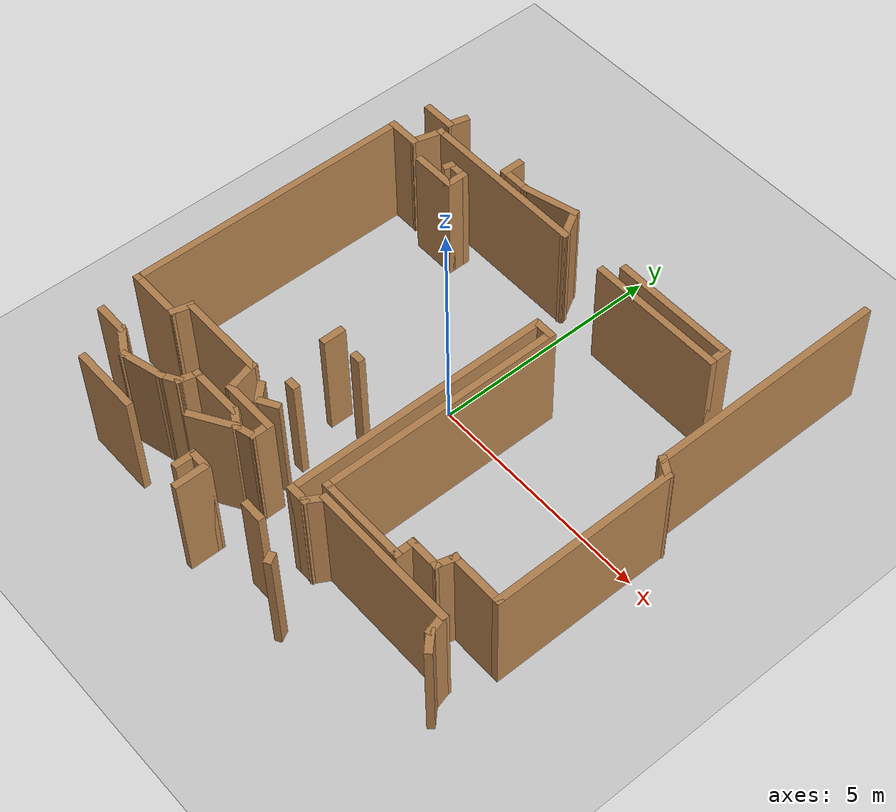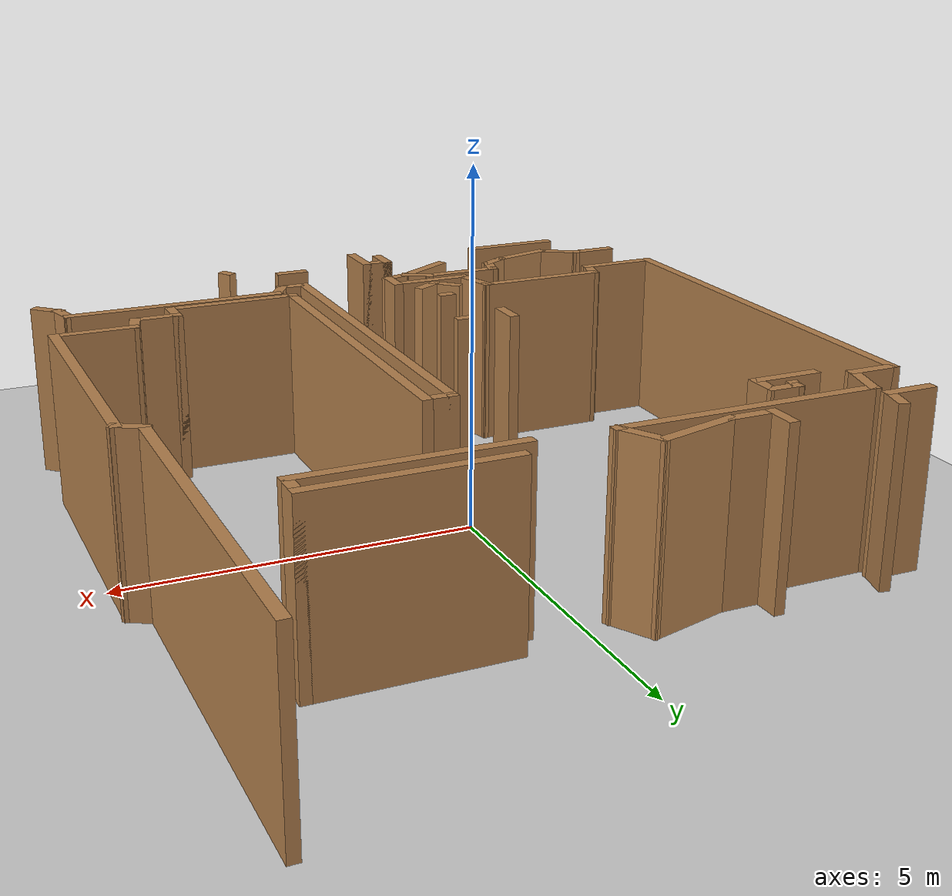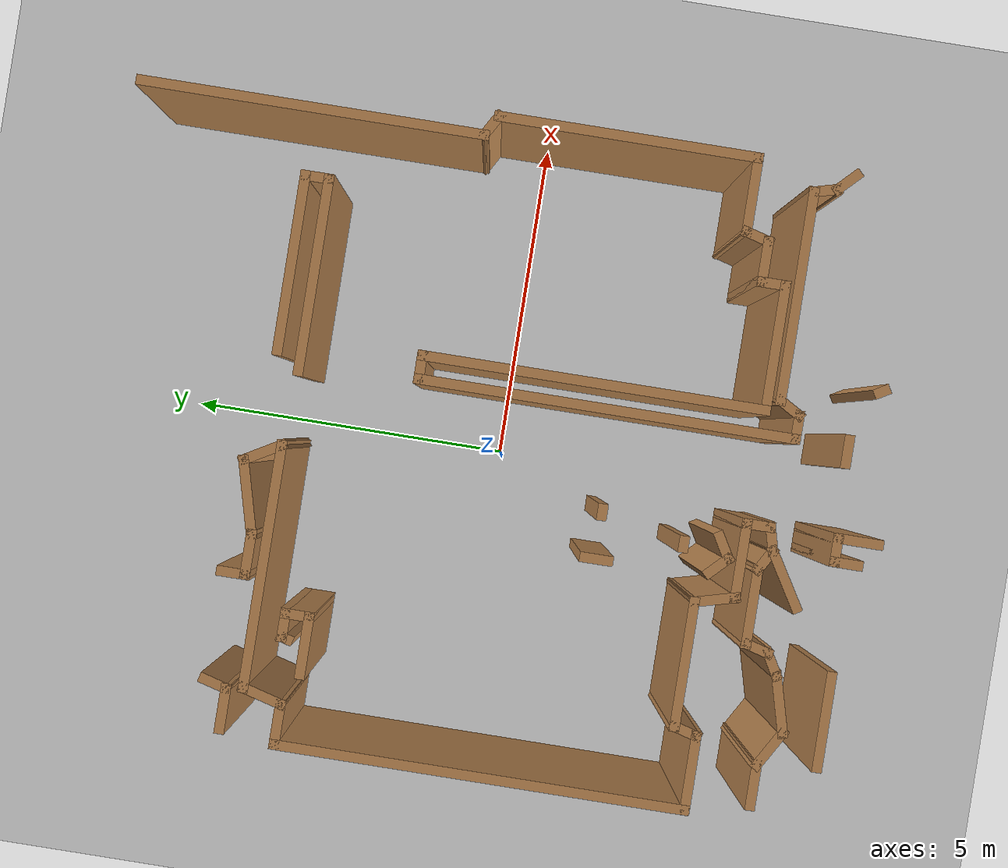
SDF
<sdf version="1.6">
 <world name="default">
  <model name="ground_plane">
   <static>1</static>
   <link name="link">
    <collision name="collision">
     <geometry><plane><normal>0 0 1</normal><size>100 100</size></plane></geometry>
     <surface>
      <contact><collide_bitmask>65535</collide_bitmask></contact>
      <friction><ode><mu>100</mu><mu2>50</mu2></ode></friction>
     </surface>
    </collision>
    <visual name="visual">
     <cast_shadows>0</cast_shadows>
     <geometry><plane><normal>0 0 1</normal><size>100 100</size></plane></geometry>
     <material>
      <script><uri>file://media/materials/scripts/gazebo.material</uri><name>Gazebo/Grey</name></script>
     </material>
    </visual>
   </link>
  </model>
  <model name="map_31">
   <pose>0.094706 -0.239588 0 0 -0 0</pose>
   <link name="Wall_10">
    <collision name="Wall_10_Collision">
     <geometry><box><size>0.75 0.15 2.5</size></box></geometry>
     <pose>0 0 1.25 0 -0 0</pose>
    </collision>
    <visual name="Wall_10_Visual">
     <pose>0 0 1.25 0 -0 0</pose>
     <geometry><box><size>0.75 0.15 2.5</size></box></geometry>
     <material>
      <script><uri>file://media/materials/scripts/gazebo.material</uri><name>Gazebo/Wood</name></script>
      <ambient>1 1 1 1</ambient>
     </material>
     <meta><layer>0</layer></meta>
    </visual>
    <pose>-2.13137 3.66941 0 0 -0 0</pose>
   </link>
   <link name="Wall_11">
    <collision name="Wall_11_Collision">
     <geometry><box><size>1.25 0.15 2.5</size></box></geometry>
     <pose>0 0 1.25 0 -0 0</pose>
    </collision>
    <visual name="Wall_11_Visual">
     <pose>0 0 1.25 0 -0 0</pose>
     <geometry><box><size>1.25 0.15 2.5</size></box></geometry>
     <material>
      <script><uri>file://media/materials/scripts/gazebo.material</uri><name>Gazebo/Wood</name></script>
      <ambient>1 1 1 1</ambient>
     </material>
     <meta><layer>0</layer></meta>
    </visual>
    <pose>-1.30011 3.81176 0 0 -0 0.261799</pose>
   </link>
   <link name="Wall_12">
    <collision name="Wall_12_Collision">
     <geometry><box><size>0.75 0.15 2.5</size></box></geometry>
     <pose>0 0 1.25 0 -0 0</pose>
    </collision>
    <visual name="Wall_12_Visual">
     <pose>0 0 1.25 0 -0 0</pose>
     <geometry><box><size>0.75 0.15 2.5</size></box></geometry>
     <material>
      <script><uri>file://media/materials/scripts/gazebo.material</uri><name>Gazebo/Wood</name></script>
      <ambient>1 1 1 1</ambient>
     </material>
     <meta><layer>0</layer></meta>
    </visual>
    <pose>-0.618855 3.6943 0 0 -0 -1.0472</pose>
   </link>
   <link name="Wall_13">
    <collision name="Wall_13_Collision">
     <geometry><box><size>3.75 0.15 2.5</size></box></geometry>
     <pose>0 0 1.25 0 -0 0</pose>
    </collision>
    <visual name="Wall_13_Visual">
     <pose>0 0 1.25 0 -0 0</pose>
     <geometry><box><size>3.75 0.15 2.5</size></box></geometry>
     <material>
      <script><uri>file://media/materials/scripts/gazebo.material</uri><name>Gazebo/Wood</name></script>
      <ambient>1 1 1 1</ambient>
     </material>
     <meta><layer>0</layer></meta>
    </visual>
    <pose>-2.26885 3.4345 0 0 -0 3.14159</pose>
   </link>
   <link name="Wall_132">
    <collision name="Wall_132_Collision">
     <geometry><box><size>0.5 0.15 2.5</size></box></geometry>
     <pose>0 0 1.25 0 -0 0</pose>
    </collision>
    <visual name="Wall_132_Visual">
     <pose>0 0 1.25 0 -0 0</pose>
     <geometry><box><size>0.5 0.15 2.5</size></box></geometry>
     <material>
      <script><uri>file://media/materials/scripts/gazebo.material</uri><name>Gazebo/Wood</name></script>
      <ambient>1 1 1 1</ambient>
     </material>
     <meta><layer>0</layer></meta>
    </visual>
    <pose>-1.39156 -1.38804 0 0 -0 -1.5708</pose>
   </link>
   <link name="Wall_134">
    <collision name="Wall_134_Collision">
     <geometry><box><size>0.25 0.15 2.5</size></box></geometry>
     <pose>0 0 1.25 0 -0 0</pose>
    </collision>
    <visual name="Wall_134_Visual">
     <pose>0 0 1.25 0 -0 0</pose>
     <geometry><box><size>0.25 0.15 2.5</size></box></geometry>
     <material>
      <script><uri>file://media/materials/scripts/gazebo.material</uri><name>Gazebo/Wood</name></script>
      <ambient>1 1 1 1</ambient>
     </material>
     <meta><layer>0</layer></meta>
    </visual>
    <pose>-0.699161 -1.36599 0 0 -0 0</pose>
   </link>
   <link name="Wall_136">
    <collision name="Wall_136_Collision">
     <geometry><box><size>0.25 0.15 2.5</size></box></geometry>
     <pose>0 0 1.25 0 -0 0</pose>
    </collision>
    <visual name="Wall_136_Visual">
     <pose>0 0 1.25 0 -0 0</pose>
     <geometry><box><size>0.25 0.15 2.5</size></box></geometry>
     <material>
      <script><uri>file://media/materials/scripts/gazebo.material</uri><name>Gazebo/Wood</name></script>
      <ambient>1 1 1 1</ambient>
     </material>
     <meta><layer>0</layer></meta>
    </visual>
    <pose>-0.974473 -2.62019 0 0 -0 0</pose>
   </link>
   <link name="Wall_138">
    <collision name="Wall_138_Collision">
     <geometry><box><size>0.5 0.15 2.5</size></box></geometry>
     <pose>0 0 1.25 0 -0 0</pose>
    </collision>
    <visual name="Wall_138_Visual">
     <pose>0 0 1.25 0 -0 0</pose>
     <geometry><box><size>0.5 0.15 2.5</size></box></geometry>
     <material>
      <script><uri>file://media/materials/scripts/gazebo.material</uri><name>Gazebo/Wood</name></script>
      <ambient>1 1 1 1</ambient>
     </material>
     <meta><layer>0</layer></meta>
    </visual>
    <pose>-1.20663 -3.1722 0 0 -0 -0.785398</pose>
   </link>
   <link name="Wall_139">
    <collision name="Wall_139_Collision">
     <geometry><box><size>0.5 0.15 2.5</size></box></geometry>
     <pose>0 0 1.25 0 -0 0</pose>
    </collision>
    <visual name="Wall_139_Visual">
     <pose>0 0 1.25 0 -0 0</pose>
     <geometry><box><size>0.5 0.15 2.5</size></box></geometry>
     <material>
      <script><uri>file://media/materials/scripts/gazebo.material</uri><name>Gazebo/Wood</name></script>
      <ambient>1 1 1 1</ambient>
     </material>
     <meta><layer>0</layer></meta>
    </visual>
    <pose>-0.931333 -3.20844 0 0 -0 0.523599</pose>
   </link>
   <link name="Wall_14">
    <collision name="Wall_14_Collision">
     <geometry><box><size>0.75 0.15 2.5</size></box></geometry>
     <pose>0 0 1.25 0 -0 0</pose>
    </collision>
    <visual name="Wall_14_Visual">
     <pose>0 0 1.25 0 -0 0</pose>
     <geometry><box><size>0.75 0.15 2.5</size></box></geometry>
     <material>
      <script><uri>file://media/materials/scripts/gazebo.material</uri><name>Gazebo/Wood</name></script>
      <ambient>1 1 1 1</ambient>
     </material>
     <meta><layer>0</layer></meta>
    </visual>
    <pose>-4.1465 3.14472 0 0 -0 -1.8326</pose>
   </link>
   <link name="Wall_141">
    <collision name="Wall_141_Collision">
     <geometry><box><size>1 0.15 2.5</size></box></geometry>
     <pose>0 0 1.25 0 -0 0</pose>
    </collision>
    <visual name="Wall_141_Visual">
     <pose>0 0 1.25 0 -0 0</pose>
     <geometry><box><size>1 0.15 2.5</size></box></geometry>
     <material>
      <script><uri>file://media/materials/scripts/gazebo.material</uri><name>Gazebo/Wood</name></script>
      <ambient>1 1 1 1</ambient>
     </material>
     <meta><layer>0</layer></meta>
    </visual>
    <pose>-3.322 2.64133 0 0 -0 0</pose>
   </link>
   <link name="Wall_142">
    <collision name="Wall_142_Collision">
     <geometry><box><size>0.5 0.15 2.5</size></box></geometry>
     <pose>0 0 1.25 0 -0 0</pose>
    </collision>
    <visual name="Wall_142_Visual">
     <pose>0 0 1.25 0 -0 0</pose>
     <geometry><box><size>0.5 0.15 2.5</size></box></geometry>
     <material>
      <script><uri>file://media/materials/scripts/gazebo.material</uri><name>Gazebo/Wood</name></script>
      <ambient>1 1 1 1</ambient>
     </material>
     <meta><layer>0</layer></meta>
    </visual>
    <pose>-2.897 2.81633 0 0 -0 1.5708</pose>
   </link>
   <link name="Wall_143">
    <collision name="Wall_143_Collision">
     <geometry><box><size>0.5 0.15 2.5</size></box></geometry>
     <pose>0 0 1.25 0 -0 0</pose>
    </collision>
    <visual name="Wall_143_Visual">
     <pose>0 0 1.25 0 -0 0</pose>
     <geometry><box><size>0.5 0.15 2.5</size></box></geometry>
     <material>
      <script><uri>file://media/materials/scripts/gazebo.material</uri><name>Gazebo/Wood</name></script>
      <ambient>1 1 1 1</ambient>
     </material>
     <meta><layer>0</layer></meta>
    </visual>
    <pose>-3.072 2.99133 0 0 -0 3.14159</pose>
   </link>
   <link name="Wall_144">
    <collision name="Wall_144_Collision">
     <geometry><box><size>0.25 0.15 2.5</size></box></geometry>
     <pose>0 0 1.25 0 -0 0</pose>
    </collision>
    <visual name="Wall_144_Visual">
     <pose>0 0 1.25 0 -0 0</pose>
     <geometry><box><size>0.25 0.15 2.5</size></box></geometry>
     <material>
      <script><uri>file://media/materials/scripts/gazebo.material</uri><name>Gazebo/Wood</name></script>
      <ambient>1 1 1 1</ambient>
     </material>
     <meta><layer>0</layer></meta>
    </visual>
    <pose>-3.25994 2.94303 0 0 -0 -1.8326</pose>
   </link>
   <link name="Wall_146">
    <collision name="Wall_146_Collision">
     <geometry><box><size>1.05065 0.15 2.5</size></box></geometry>
     <pose>0 0 1.25 0 -0 0</pose>
    </collision>
    <visual name="Wall_146_Visual">
     <pose>0 0 1.25 0 -0 0</pose>
     <geometry><box><size>1.05065 0.15 2.5</size></box></geometry>
     <material>
      <script><uri>file://media/materials/scripts/gazebo.material</uri><name>Gazebo/Wood</name></script>
      <ambient>1 1 1 1</ambient>
     </material>
     <meta><layer>0</layer></meta>
    </visual>
    <pose>-1.25131 -4.16078 0 0 -0 0.545501</pose>
   </link>
   <link name="Wall_161">
    <collision name="Wall_161_Collision">
     <geometry><box><size>1.5 0.15 2.5</size></box></geometry>
     <pose>0 0 1.25 0 -0 0</pose>
    </collision>
    <visual name="Wall_161_Visual">
     <pose>0 0 1.25 0 -0 0</pose>
     <geometry><box><size>1.5 0.15 2.5</size></box></geometry>
     <material>
      <script><uri>file://media/materials/scripts/gazebo.material</uri><name>Gazebo/Wood</name></script>
      <ambient>1 1 1 1</ambient>
     </material>
     <meta><layer>0</layer></meta>
    </visual>
    <pose>-3.22495 -5.06741 0 0 -0 3.14159</pose>
   </link>
   <link name="Wall_163">
    <collision name="Wall_163_Collision">
     <geometry><box><size>0.25 0.15 2.5</size></box></geometry>
     <pose>0 0 1.25 0 -0 0</pose>
    </collision>
    <visual name="Wall_163_Visual">
     <pose>0 0 1.25 0 -0 0</pose>
     <geometry><box><size>0.25 0.15 2.5</size></box></geometry>
     <material>
      <script><uri>file://media/materials/scripts/gazebo.material</uri><name>Gazebo/Wood</name></script>
      <ambient>1 1 1 1</ambient>
     </material>
     <meta><layer>0</layer></meta>
    </visual>
    <pose>1.69247 -5.1413 0 0 -0 -1.0472</pose>
   </link>
   <link name="Wall_17">
    <collision name="Wall_17_Collision">
     <geometry><box><size>0.75 0.15 2.5</size></box></geometry>
     <pose>0 0 1.25 0 -0 0</pose>
    </collision>
    <visual name="Wall_17_Visual">
     <pose>0 0 1.25 0 -0 0</pose>
     <geometry><box><size>0.75 0.15 2.5</size></box></geometry>
     <material>
      <script><uri>file://media/materials/scripts/gazebo.material</uri><name>Gazebo/Wood</name></script>
      <ambient>1 1 1 1</ambient>
     </material>
     <meta><layer>0</layer></meta>
    </visual>
    <pose>-4.52415 2.85494 0 0 -0 3.14159</pose>
   </link>
   <link name="Wall_18">
    <collision name="Wall_18_Collision">
     <geometry><box><size>6.25 0.15 2.5</size></box></geometry>
     <pose>0 0 1.25 0 -0 0</pose>
    </collision>
    <visual name="Wall_18_Visual">
     <pose>0 0 1.25 0 -0 0</pose>
     <geometry><box><size>6.25 0.15 2.5</size></box></geometry>
     <material>
      <script><uri>file://media/materials/scripts/gazebo.material</uri><name>Gazebo/Wood</name></script>
      <ambient>1 1 1 1</ambient>
     </material>
     <meta><layer>0</layer></meta>
    </visual>
    <pose>-4.82415 -0.195058 0 0 -0 -1.5708</pose>
   </link>
   <link name="Wall_19">
    <collision name="Wall_19_Collision">
     <geometry><box><size>1.25 0.15 2.5</size></box></geometry>
     <pose>0 0 1.25 0 -0 0</pose>
    </collision>
    <visual name="Wall_19_Visual">
     <pose>0 0 1.25 0 -0 0</pose>
     <geometry><box><size>1.25 0.15 2.5</size></box></geometry>
     <material>
      <script><uri>file://media/materials/scripts/gazebo.material</uri><name>Gazebo/Wood</name></script>
      <ambient>1 1 1 1</ambient>
     </material>
     <meta><layer>0</layer></meta>
    </visual>
    <pose>-4.27415 -3.24506 0 0 -0 0</pose>
   </link>
   <link name="Wall_20">
    <collision name="Wall_20_Collision">
     <geometry><box><size>0.5 0.15 2.5</size></box></geometry>
     <pose>0 0 1.25 0 -0 0</pose>
    </collision>
    <visual name="Wall_20_Visual">
     <pose>0 0 1.25 0 -0 0</pose>
     <geometry><box><size>0.5 0.15 2.5</size></box></geometry>
     <material>
      <script><uri>file://media/materials/scripts/gazebo.material</uri><name>Gazebo/Wood</name></script>
      <ambient>1 1 1 1</ambient>
     </material>
     <meta><layer>0</layer></meta>
    </visual>
    <pose>-3.67885 -3.07602 0 0 -0 1.309</pose>
   </link>
   <link name="Wall_21">
    <collision name="Wall_21_Collision">
     <geometry><box><size>2 0.15 2.5</size></box></geometry>
     <pose>0 0 1.25 0 -0 0</pose>
    </collision>
    <visual name="Wall_21_Visual">
     <pose>0 0 1.25 0 -0 0</pose>
     <geometry><box><size>2 0.15 2.5</size></box></geometry>
     <material>
      <script><uri>file://media/materials/scripts/gazebo.material</uri><name>Gazebo/Wood</name></script>
      <ambient>1 1 1 1</ambient>
     </material>
     <meta><layer>0</layer></meta>
    </visual>
    <pose>-2.70856 -2.90698 0 0 -0 0</pose>
   </link>
   <link name="Wall_22">
    <collision name="Wall_22_Collision">
     <geometry><box><size>0.75 0.15 2.5</size></box></geometry>
     <pose>0 0 1.25 0 -0 0</pose>
    </collision>
    <visual name="Wall_22_Visual">
     <pose>0 0 1.25 0 -0 0</pose>
     <geometry><box><size>0.75 0.15 2.5</size></box></geometry>
     <material>
      <script><uri>file://media/materials/scripts/gazebo.material</uri><name>Gazebo/Wood</name></script>
      <ambient>1 1 1 1</ambient>
     </material>
     <meta><layer>0</layer></meta>
    </visual>
    <pose>-1.70591 -3.19676 0 0 -0 -1.309</pose>
   </link>
   <link name="Wall_23">
    <collision name="Wall_23_Collision">
     <geometry><box><size>1.25 0.15 2.5</size></box></geometry>
     <pose>0 0 1.25 0 -0 0</pose>
    </collision>
    <visual name="Wall_23_Visual">
     <pose>0 0 1.25 0 -0 0</pose>
     <geometry><box><size>1.25 0.15 2.5</size></box></geometry>
     <material>
      <script><uri>file://media/materials/scripts/gazebo.material</uri><name>Gazebo/Wood</name></script>
      <ambient>1 1 1 1</ambient>
     </material>
     <meta><layer>0</layer></meta>
    </visual>
    <pose>-1.07827 -3.48654 0 0 -0 0</pose>
   </link>
   <link name="Wall_24">
    <collision name="Wall_24_Collision">
     <geometry><box><size>0.5 0.15 2.5</size></box></geometry>
     <pose>0 0 1.25 0 -0 0</pose>
    </collision>
    <visual name="Wall_24_Visual">
     <pose>0 0 1.25 0 -0 0</pose>
     <geometry><box><size>0.5 0.15 2.5</size></box></geometry>
     <material>
      <script><uri>file://media/materials/scripts/gazebo.material</uri><name>Gazebo/Wood</name></script>
      <ambient>1 1 1 1</ambient>
     </material>
     <meta><layer>0</layer></meta>
    </visual>
    <pose>-0.528269 -3.66154 0 0 -0 -1.5708</pose>
   </link>
   <link name="Wall_25">
    <collision name="Wall_25_Collision">
     <geometry><box><size>0.5 0.15 2.5</size></box></geometry>
     <pose>0 0 1.25 0 -0 0</pose>
    </collision>
    <visual name="Wall_25_Visual">
     <pose>0 0 1.25 0 -0 0</pose>
     <geometry><box><size>0.5 0.15 2.5</size></box></geometry>
     <material>
      <script><uri>file://media/materials/scripts/gazebo.material</uri><name>Gazebo/Wood</name></script>
      <ambient>1 1 1 1</ambient>
     </material>
     <meta><layer>0</layer></meta>
    </visual>
    <pose>-0.697306 -3.88183 0 0 -0 -2.87979</pose>
   </link>
   <link name="Wall_26">
    <collision name="Wall_26_Collision">
     <geometry><box><size>0.5 0.15 2.5</size></box></geometry>
     <pose>0 0 1.25 0 -0 0</pose>
    </collision>
    <visual name="Wall_26_Visual">
     <pose>0 0 1.25 0 -0 0</pose>
     <geometry><box><size>0.5 0.15 2.5</size></box></geometry>
     <material>
      <script><uri>file://media/materials/scripts/gazebo.material</uri><name>Gazebo/Wood</name></script>
      <ambient>1 1 1 1</ambient>
     </material>
     <meta><layer>0</layer></meta>
    </visual>
    <pose>-1.0179 -3.83963 0 0 -0 2.61799</pose>
   </link>
   <link name="Wall_27">
    <collision name="Wall_27_Collision">
     <geometry><box><size>1.25 0.15 2.5</size></box></geometry>
     <pose>0 0 1.25 0 -0 0</pose>
    </collision>
    <visual name="Wall_27_Visual">
     <pose>0 0 1.25 0 -0 0</pose>
     <geometry><box><size>1.25 0.15 2.5</size></box></geometry>
     <material>
      <script><uri>file://media/materials/scripts/gazebo.material</uri><name>Gazebo/Wood</name></script>
      <ambient>1 1 1 1</ambient>
     </material>
     <meta><layer>0</layer></meta>
    </visual>
    <pose>-1.71945 -3.75213 0 0 -0 3.14159</pose>
   </link>
   <link name="Wall_28">
    <collision name="Wall_28_Collision">
     <geometry><box><size>0.5 0.15 2.5</size></box></geometry>
     <pose>0 0 1.25 0 -0 0</pose>
    </collision>
    <visual name="Wall_28_Visual">
     <pose>0 0 1.25 0 -0 0</pose>
     <geometry><box><size>0.5 0.15 2.5</size></box></geometry>
     <material>
      <script><uri>file://media/materials/scripts/gazebo.material</uri><name>Gazebo/Wood</name></script>
      <ambient>1 1 1 1</ambient>
     </material>
     <meta><layer>0</layer></meta>
    </visual>
    <pose>-2.31474 -3.92116 0 0 -0 -1.8326</pose>
   </link>
   <link name="Wall_29">
    <collision name="Wall_29_Collision">
     <geometry><box><size>0.5 0.15 2.5</size></box></geometry>
     <pose>0 0 1.25 0 -0 0</pose>
    </collision>
    <visual name="Wall_29_Visual">
     <pose>0 0 1.25 0 -0 0</pose>
     <geometry><box><size>0.5 0.15 2.5</size></box></geometry>
     <material>
      <script><uri>file://media/materials/scripts/gazebo.material</uri><name>Gazebo/Wood</name></script>
      <ambient>1 1 1 1</ambient>
     </material>
     <meta><layer>0</layer></meta>
    </visual>
    <pose>-2.51159 -4.1777 0 0 -0 -2.61799</pose>
   </link>
   <link name="Wall_32">
    <collision name="Wall_32_Collision">
     <geometry><box><size>1 0.15 2.5</size></box></geometry>
     <pose>0 0 1.25 0 -0 0</pose>
    </collision>
    <visual name="Wall_32_Visual">
     <pose>0 0 1.25 0 -0 0</pose>
     <geometry><box><size>1 0.15 2.5</size></box></geometry>
     <material>
      <script><uri>file://media/materials/scripts/gazebo.material</uri><name>Gazebo/Wood</name></script>
      <ambient>1 1 1 1</ambient>
     </material>
     <meta><layer>0</layer></meta>
    </visual>
    <pose>-3.07367 -4.3752 0 0 -0 -2.87979</pose>
   </link>
   <link name="Wall_33">
    <collision name="Wall_33_Collision">
     <geometry><box><size>0.75 0.15 2.5</size></box></geometry>
     <pose>0 0 1.25 0 -0 0</pose>
    </collision>
    <visual name="Wall_33_Visual">
     <pose>0 0 1.25 0 -0 0</pose>
     <geometry><box><size>0.75 0.15 2.5</size></box></geometry>
     <material>
      <script><uri>file://media/materials/scripts/gazebo.material</uri><name>Gazebo/Wood</name></script>
      <ambient>1 1 1 1</ambient>
     </material>
     <meta><layer>0</layer></meta>
    </visual>
    <pose>-3.74399 -4.3352 0 0 -0 2.61799</pose>
   </link>
   <link name="Wall_34">
    <collision name="Wall_34_Collision">
     <geometry><box><size>0.75 0.15 2.5</size></box></geometry>
     <pose>0 0 1.25 0 -0 0</pose>
    </collision>
    <visual name="Wall_34_Visual">
     <pose>0 0 1.25 0 -0 0</pose>
     <geometry><box><size>0.75 0.15 2.5</size></box></geometry>
     <material>
      <script><uri>file://media/materials/scripts/gazebo.material</uri><name>Gazebo/Wood</name></script>
      <ambient>1 1 1 1</ambient>
     </material>
     <meta><layer>0</layer></meta>
    </visual>
    <pose>-4.3038 -4.1852 0 0 -0 3.14159</pose>
   </link>
   <link name="Wall_54">
    <collision name="Wall_54_Collision">
     <geometry><box><size>0.5 0.15 2.5</size></box></geometry>
     <pose>0 0 1.25 0 -0 0</pose>
    </collision>
    <visual name="Wall_54_Visual">
     <pose>0 0 1.25 0 -0 0</pose>
     <geometry><box><size>0.5 0.15 2.5</size></box></geometry>
     <material>
      <script><uri>file://media/materials/scripts/gazebo.material</uri><name>Gazebo/Wood</name></script>
      <ambient>1 1 1 1</ambient>
     </material>
     <meta><layer>0</layer></meta>
    </visual>
    <pose>-0.881908 -5.01869 0 0 -0 1.5708</pose>
   </link>
   <link name="Wall_55">
    <collision name="Wall_55_Collision">
     <geometry><box><size>0.5 0.15 2.5</size></box></geometry>
     <pose>0 0 1.25 0 -0 0</pose>
    </collision>
    <visual name="Wall_55_Visual">
     <pose>0 0 1.25 0 -0 0</pose>
     <geometry><box><size>0.5 0.15 2.5</size></box></geometry>
     <material>
      <script><uri>file://media/materials/scripts/gazebo.material</uri><name>Gazebo/Wood</name></script>
      <ambient>1 1 1 1</ambient>
     </material>
     <meta><layer>0</layer></meta>
    </visual>
    <pose>-0.706908 -4.84369 0 0 -0 0</pose>
   </link>
   <link name="Wall_56">
    <collision name="Wall_56_Collision">
     <geometry><box><size>0.75 0.15 2.5</size></box></geometry>
     <pose>0 0 1.25 0 -0 0</pose>
    </collision>
    <visual name="Wall_56_Visual">
     <pose>0 0 1.25 0 -0 0</pose>
     <geometry><box><size>0.75 0.15 2.5</size></box></geometry>
     <material>
      <script><uri>file://media/materials/scripts/gazebo.material</uri><name>Gazebo/Wood</name></script>
      <ambient>1 1 1 1</ambient>
     </material>
     <meta><layer>0</layer></meta>
    </visual>
    <pose>-0.531908 -5.14369 0 0 -0 -1.5708</pose>
   </link>
   <link name="Wall_6">
    <collision name="Wall_6_Collision">
     <geometry><box><size>0.75 0.15 2.5</size></box></geometry>
     <pose>0 0 1.25 0 -0 0</pose>
    </collision>
    <visual name="Wall_6_Visual">
     <pose>0 0 1.25 0 -0 0</pose>
     <geometry><box><size>0.75 0.15 2.5</size></box></geometry>
     <material>
      <script><uri>file://media/materials/scripts/gazebo.material</uri><name>Gazebo/Wood</name></script>
      <ambient>1 1 1 1</ambient>
     </material>
     <meta><layer>0</layer></meta>
    </visual>
    <pose>-4.42196 3.68134 0 0 -0 0</pose>
   </link>
   <link name="Wall_7">
    <collision name="Wall_7_Collision">
     <geometry><box><size>0.5 0.15 2.5</size></box></geometry>
     <pose>0 0 1.25 0 -0 0</pose>
    </collision>
    <visual name="Wall_7_Visual">
     <pose>0 0 1.25 0 -0 0</pose>
     <geometry><box><size>0.5 0.15 2.5</size></box></geometry>
     <material>
      <script><uri>file://media/materials/scripts/gazebo.material</uri><name>Gazebo/Wood</name></script>
      <ambient>1 1 1 1</ambient>
     </material>
     <meta><layer>0</layer></meta>
    </visual>
    <pose>-4.07667 3.85038 0 0 -0 1.309</pose>
   </link>
   <link name="Wall_73">
    <collision name="Wall_73_Collision">
     <geometry><box><size>0.5 0.15 2.5</size></box></geometry>
     <pose>0 0 1.25 0 -0 0</pose>
    </collision>
    <visual name="Wall_73_Visual">
     <pose>0 0 1.25 0 -0 0</pose>
     <geometry><box><size>0.5 0.15 2.5</size></box></geometry>
     <material>
      <script><uri>file://media/materials/scripts/gazebo.material</uri><name>Gazebo/Wood</name></script>
      <ambient>1 1 1 1</ambient>
     </material>
     <meta><layer>0</layer></meta>
    </visual>
    <pose>0.744183 -4.77797 0 0 -0 0</pose>
   </link>
   <link name="Wall_77">
    <collision name="Wall_77_Collision">
     <geometry><box><size>0.5 0.15 2.5</size></box></geometry>
     <pose>0 0 1.25 0 -0 0</pose>
    </collision>
    <visual name="Wall_77_Visual">
     <pose>0 0 1.25 0 -0 0</pose>
     <geometry><box><size>0.5 0.15 2.5</size></box></geometry>
     <material>
      <script><uri>file://media/materials/scripts/gazebo.material</uri><name>Gazebo/Wood</name></script>
      <ambient>1 1 1 1</ambient>
     </material>
     <meta><layer>0</layer></meta>
    </visual>
    <pose>4.64544 -4.15423 0 0 -0 2.35619</pose>
   </link>
   <link name="Wall_78">
    <collision name="Wall_78_Collision">
     <geometry><box><size>0.5 0.15 2.5</size></box></geometry>
     <pose>0 0 1.25 0 -0 0</pose>
    </collision>
    <visual name="Wall_78_Visual">
     <pose>0 0 1.25 0 -0 0</pose>
     <geometry><box><size>0.5 0.15 2.5</size></box></geometry>
     <material>
      <script><uri>file://media/materials/scripts/gazebo.material</uri><name>Gazebo/Wood</name></script>
      <ambient>1 1 1 1</ambient>
     </material>
     <meta><layer>0</layer></meta>
    </visual>
    <pose>4.4764 -3.86144 0 0 -0 1.8326</pose>
   </link>
   <link name="Wall_79">
    <collision name="Wall_79_Collision">
     <geometry><box><size>3.25 0.15 2.5</size></box></geometry>
     <pose>0 0 1.25 0 -0 0</pose>
    </collision>
    <visual name="Wall_79_Visual">
     <pose>0 0 1.25 0 -0 0</pose>
     <geometry><box><size>3.25 0.15 2.5</size></box></geometry>
     <material>
      <script><uri>file://media/materials/scripts/gazebo.material</uri><name>Gazebo/Wood</name></script>
      <ambient>1 1 1 1</ambient>
     </material>
     <meta><layer>0</layer></meta>
    </visual>
    <pose>2.88111 -3.69241 0 0 -0 3.14159</pose>
   </link>
   <link name="Wall_80">
    <collision name="Wall_80_Collision">
     <geometry><box><size>0.5 0.15 2.5</size></box></geometry>
     <pose>0 0 1.25 0 -0 0</pose>
    </collision>
    <visual name="Wall_80_Visual">
     <pose>0 0 1.25 0 -0 0</pose>
     <geometry><box><size>0.5 0.15 2.5</size></box></geometry>
     <material>
      <script><uri>file://media/materials/scripts/gazebo.material</uri><name>Gazebo/Wood</name></script>
      <ambient>1 1 1 1</ambient>
     </material>
     <meta><layer>0</layer></meta>
    </visual>
    <pose>1.24361 -3.84396 0 0 -0 -2.0944</pose>
   </link>
   <link name="Wall_81">
    <collision name="Wall_81_Collision">
     <geometry><box><size>0.5 0.15 2.5</size></box></geometry>
     <pose>0 0 1.25 0 -0 0</pose>
    </collision>
    <visual name="Wall_81_Visual">
     <pose>0 0 1.25 0 -0 0</pose>
     <geometry><box><size>0.5 0.15 2.5</size></box></geometry>
     <material>
      <script><uri>file://media/materials/scripts/gazebo.material</uri><name>Gazebo/Wood</name></script>
      <ambient>1 1 1 1</ambient>
     </material>
     <meta><layer>0</layer></meta>
    </visual>
    <pose>0.981109 -3.99552 0 0 -0 3.14159</pose>
   </link>
   <link name="Wall_82">
    <collision name="Wall_82_Collision">
     <geometry><box><size>5.75 0.15 2.5</size></box></geometry>
     <pose>0 0 1.25 0 -0 0</pose>
    </collision>
    <visual name="Wall_82_Visual">
     <pose>0 0 1.25 0 -0 0</pose>
     <geometry><box><size>5.75 0.15 2.5</size></box></geometry>
     <material>
      <script><uri>file://media/materials/scripts/gazebo.material</uri><name>Gazebo/Wood</name></script>
      <ambient>1 1 1 1</ambient>
     </material>
     <meta><layer>0</layer></meta>
    </visual>
    <pose>0.806109 -1.19552 0 0 -0 1.5708</pose>
   </link>
   <link name="Wall_83">
    <collision name="Wall_83_Collision">
     <geometry><box><size>0.5 0.15 2.5</size></box></geometry>
     <pose>0 0 1.25 0 -0 0</pose>
    </collision>
    <visual name="Wall_83_Visual">
     <pose>0 0 1.25 0 -0 0</pose>
     <geometry><box><size>0.5 0.15 2.5</size></box></geometry>
     <material>
      <script><uri>file://media/materials/scripts/gazebo.material</uri><name>Gazebo/Wood</name></script>
      <ambient>1 1 1 1</ambient>
     </material>
     <meta><layer>0</layer></meta>
    </visual>
    <pose>0.981109 1.60448 0 0 -0 0</pose>
   </link>
   <link name="Wall_86">
    <collision name="Wall_86_Collision">
     <geometry><box><size>5.25 0.15 2.5</size></box></geometry>
     <pose>0 0 1.25 0 -0 0</pose>
    </collision>
    <visual name="Wall_86_Visual">
     <pose>0 0 1.25 0 -0 0</pose>
     <geometry><box><size>5.25 0.15 2.5</size></box></geometry>
     <material>
      <script><uri>file://media/materials/scripts/gazebo.material</uri><name>Gazebo/Wood</name></script>
      <ambient>1 1 1 1</ambient>
     </material>
     <meta><layer>0</layer></meta>
    </visual>
    <pose>1.15611 -0.945518 0 0 -0 -1.5708</pose>
   </link>
   <link name="Wall_87">
    <collision name="Wall_87_Collision">
     <geometry><box><size>2 0.15 2.5</size></box></geometry>
     <pose>0 0 1.25 0 -0 0</pose>
    </collision>
    <visual name="Wall_87_Visual">
     <pose>0 0 1.25 0 -0 0</pose>
     <geometry><box><size>2 0.15 2.5</size></box></geometry>
     <material>
      <script><uri>file://media/materials/scripts/gazebo.material</uri><name>Gazebo/Wood</name></script>
      <ambient>1 1 1 1</ambient>
     </material>
     <meta><layer>0</layer></meta>
    </visual>
    <pose>2.08111 -3.49552 0 0 -0 0</pose>
   </link>
   <link name="Wall_88">
    <collision name="Wall_88_Collision">
     <geometry><box><size>0.5 0.15 2.5</size></box></geometry>
     <pose>0 0 1.25 0 -0 0</pose>
    </collision>
    <visual name="Wall_88_Visual">
     <pose>0 0 1.25 0 -0 0</pose>
     <geometry><box><size>0.5 0.15 2.5</size></box></geometry>
     <material>
      <script><uri>file://media/materials/scripts/gazebo.material</uri><name>Gazebo/Wood</name></script>
      <ambient>1 1 1 1</ambient>
     </material>
     <meta><layer>0</layer></meta>
    </visual>
    <pose>3.00611 -3.32052 0 0 -0 1.5708</pose>
   </link>
   <link name="Wall_89">
    <collision name="Wall_89_Collision">
     <geometry><box><size>0.75 0.15 2.5</size></box></geometry>
     <pose>0 0 1.25 0 -0 0</pose>
    </collision>
    <visual name="Wall_89_Visual">
     <pose>0 0 1.25 0 -0 0</pose>
     <geometry><box><size>0.75 0.15 2.5</size></box></geometry>
     <material>
      <script><uri>file://media/materials/scripts/gazebo.material</uri><name>Gazebo/Wood</name></script>
      <ambient>1 1 1 1</ambient>
     </material>
     <meta><layer>0</layer></meta>
    </visual>
    <pose>3.30611 -3.14552 0 0 -0 0</pose>
   </link>
   <link name="Wall_9">
    <collision name="Wall_9_Collision">
     <geometry><box><size>0.5 0.15 2.5</size></box></geometry>
     <pose>0 0 1.25 0 -0 0</pose>
    </collision>
    <visual name="Wall_9_Visual">
     <pose>0 0 1.25 0 -0 0</pose>
     <geometry><box><size>0.5 0.15 2.5</size></box></geometry>
     <material>
      <script><uri>file://media/materials/scripts/gazebo.material</uri><name>Gazebo/Wood</name></script>
      <ambient>1 1 1 1</ambient>
     </material>
     <meta><layer>0</layer></meta>
    </visual>
    <pose>-2.43137 3.84441 0 0 -0 -1.5708</pose>
   </link>
   <link name="Wall_90">
    <collision name="Wall_90_Collision">
     <geometry><box><size>0.5 0.15 2.5</size></box></geometry>
     <pose>0 0 1.25 0 -0 0</pose>
    </collision>
    <visual name="Wall_90_Visual">
     <pose>0 0 1.25 0 -0 0</pose>
     <geometry><box><size>0.5 0.15 2.5</size></box></geometry>
     <material>
      <script><uri>file://media/materials/scripts/gazebo.material</uri><name>Gazebo/Wood</name></script>
      <ambient>1 1 1 1</ambient>
     </material>
     <meta><layer>0</layer></meta>
    </visual>
    <pose>3.6514 -2.97648 0 0 -0 1.309</pose>
   </link>
   <link name="Wall_91">
    <collision name="Wall_91_Collision">
     <geometry><box><size>1.25 0.15 2.5</size></box></geometry>
     <pose>0 0 1.25 0 -0 0</pose>
    </collision>
    <visual name="Wall_91_Visual">
     <pose>0 0 1.25 0 -0 0</pose>
     <geometry><box><size>1.25 0.15 2.5</size></box></geometry>
     <material>
      <script><uri>file://media/materials/scripts/gazebo.material</uri><name>Gazebo/Wood</name></script>
      <ambient>1 1 1 1</ambient>
     </material>
     <meta><layer>0</layer></meta>
    </visual>
    <pose>4.24669 -2.80744 0 0 -0 0</pose>
   </link>
   <link name="Wall_92">
    <collision name="Wall_92_Collision">
     <geometry><box><size>4 0.15 2.5</size></box></geometry>
     <pose>0 0 1.25 0 -0 0</pose>
    </collision>
    <visual name="Wall_92_Visual">
     <pose>0 0 1.25 0 -0 0</pose>
     <geometry><box><size>4 0.15 2.5</size></box></geometry>
     <material>
      <script><uri>file://media/materials/scripts/gazebo.material</uri><name>Gazebo/Wood</name></script>
      <ambient>1 1 1 1</ambient>
     </material>
     <meta><layer>0</layer></meta>
    </visual>
    <pose>4.79669 -0.882443 0 0 -0 1.5708</pose>
   </link>
   <link name="Wall_93">
    <collision name="Wall_93_Collision">
     <geometry><box><size>0.5 0.15 2.5</size></box></geometry>
     <pose>0 0 1.25 0 -0 0</pose>
    </collision>
    <visual name="Wall_93_Visual">
     <pose>0 0 1.25 0 -0 0</pose>
     <geometry><box><size>0.5 0.15 2.5</size></box></geometry>
     <material>
      <script><uri>file://media/materials/scripts/gazebo.material</uri><name>Gazebo/Wood</name></script>
      <ambient>1 1 1 1</ambient>
     </material>
     <meta><layer>0</layer></meta>
    </visual>
    <pose>4.64514 1.13006 0 0 -0 2.61799</pose>
   </link>
   <link name="Wall_94">
    <collision name="Wall_94_Collision">
     <geometry><box><size>5.25 0.15 2.5</size></box></geometry>
     <pose>0 0 1.25 0 -0 0</pose>
    </collision>
    <visual name="Wall_94_Visual">
     <pose>0 0 1.25 0 -0 0</pose>
     <geometry><box><size>5.25 0.15 2.5</size></box></geometry>
     <material>
      <script><uri>file://media/materials/scripts/gazebo.material</uri><name>Gazebo/Wood</name></script>
      <ambient>1 1 1 1</ambient>
     </material>
     <meta><layer>0</layer></meta>
    </visual>
    <pose>4.49359 3.76756 0 0 -0 1.5708</pose>
   </link>
   <link name="Wall_97">
    <collision name="Wall_97_Collision">
     <geometry><box><size>2.75 0.15 2.5</size></box></geometry>
     <pose>0 0 1.25 0 -0 0</pose>
    </collision>
    <visual name="Wall_97_Visual">
     <pose>0 0 1.25 0 -0 0</pose>
     <geometry><box><size>2.75 0.15 2.5</size></box></geometry>
     <material>
      <script><uri>file://media/materials/scripts/gazebo.material</uri><name>Gazebo/Wood</name></script>
      <ambient>1 1 1 1</ambient>
     </material>
     <meta><layer>0</layer></meta>
    </visual>
    <pose>2.19359 3.71756 0 0 -0 0</pose>
   </link>
   <link name="Wall_98">
    <collision name="Wall_98_Collision">
     <geometry><box><size>0.5 0.15 2.5</size></box></geometry>
     <pose>0 0 1.25 0 -0 0</pose>
    </collision>
    <visual name="Wall_98_Visual">
     <pose>0 0 1.25 0 -0 0</pose>
     <geometry><box><size>0.5 0.15 2.5</size></box></geometry>
     <material>
      <script><uri>file://media/materials/scripts/gazebo.material</uri><name>Gazebo/Wood</name></script>
      <ambient>1 1 1 1</ambient>
     </material>
     <meta><layer>0</layer></meta>
    </visual>
    <pose>3.49359 3.54256 0 0 -0 -1.5708</pose>
   </link>
   <link name="Wall_99">
    <collision name="Wall_99_Collision">
     <geometry><box><size>3 0.15 2.5</size></box></geometry>
     <pose>0 0 1.25 0 -0 0</pose>
    </collision>
    <visual name="Wall_99_Visual">
     <pose>0 0 1.25 0 -0 0</pose>
     <geometry><box><size>3 0.15 2.5</size></box></geometry>
     <material>
      <script><uri>file://media/materials/scripts/gazebo.material</uri><name>Gazebo/Wood</name></script>
      <ambient>1 1 1 1</ambient>
     </material>
     <meta><layer>0</layer></meta>
    </visual>
    <pose>2.06859 3.36756 0 0 -0 3.14159</pose>
   </link>
   <static>1</static>
  </model>
 </world>
</sdf>
